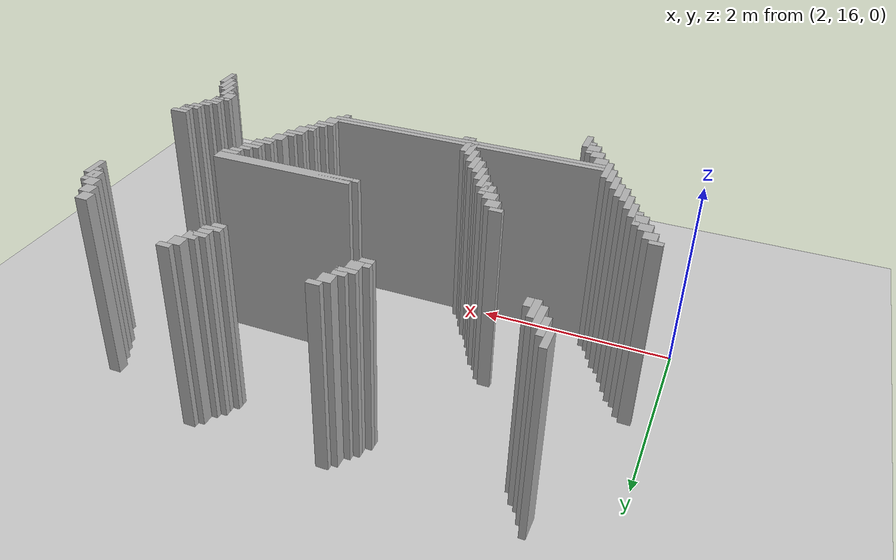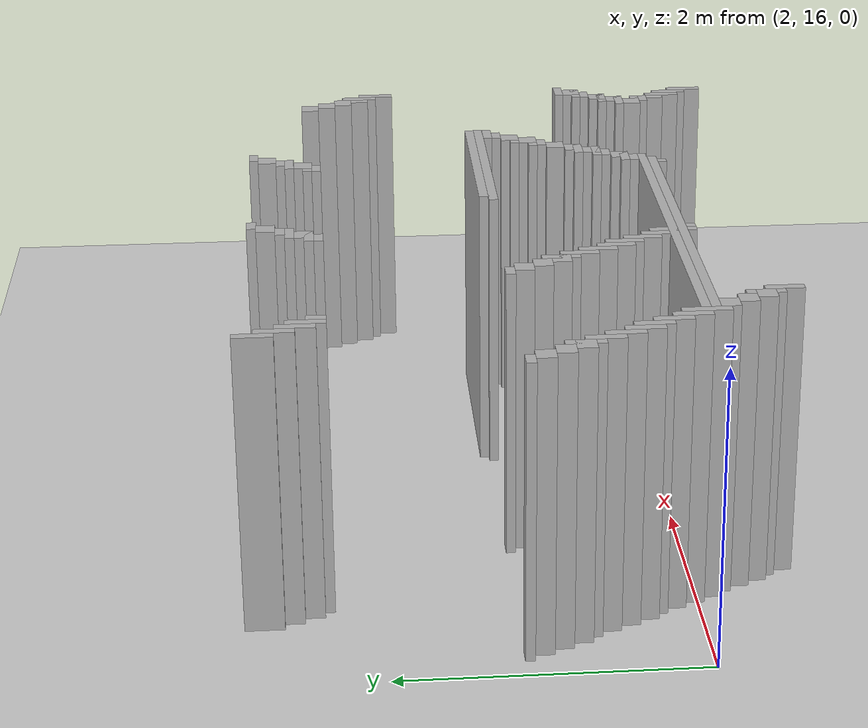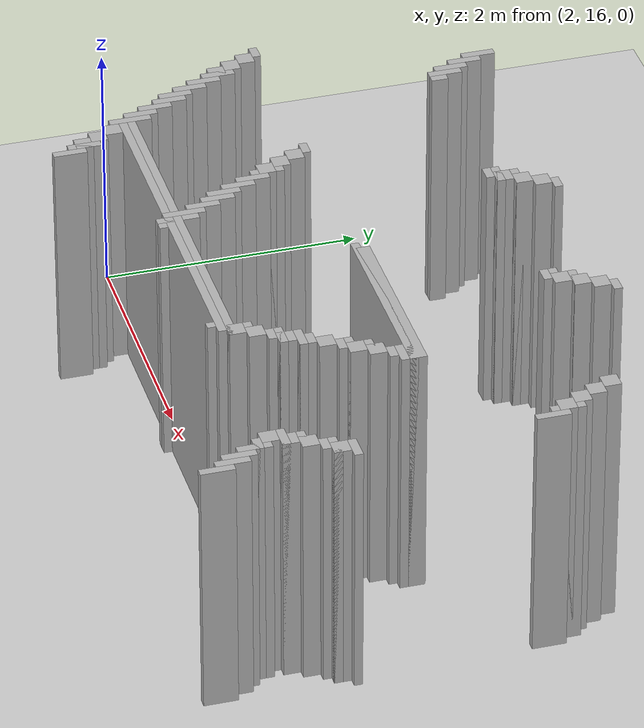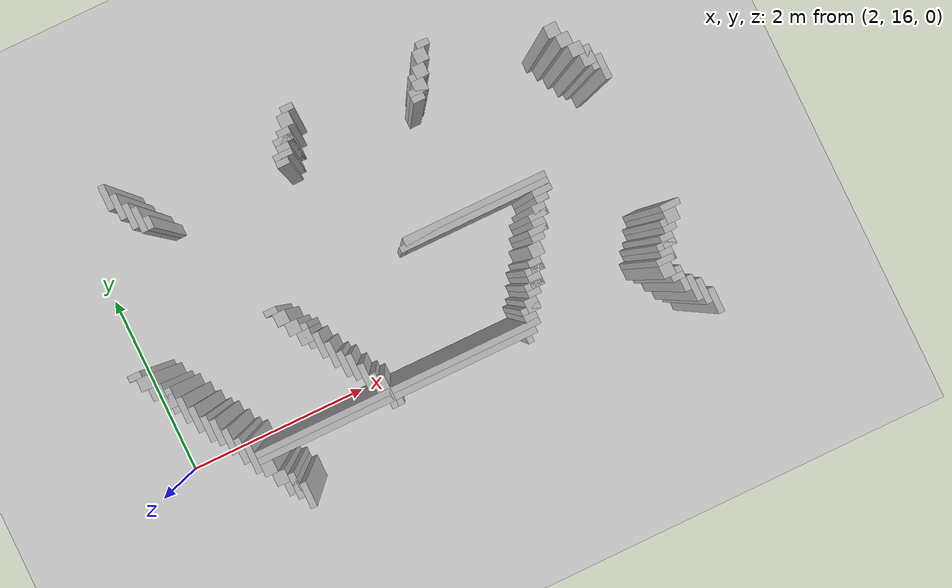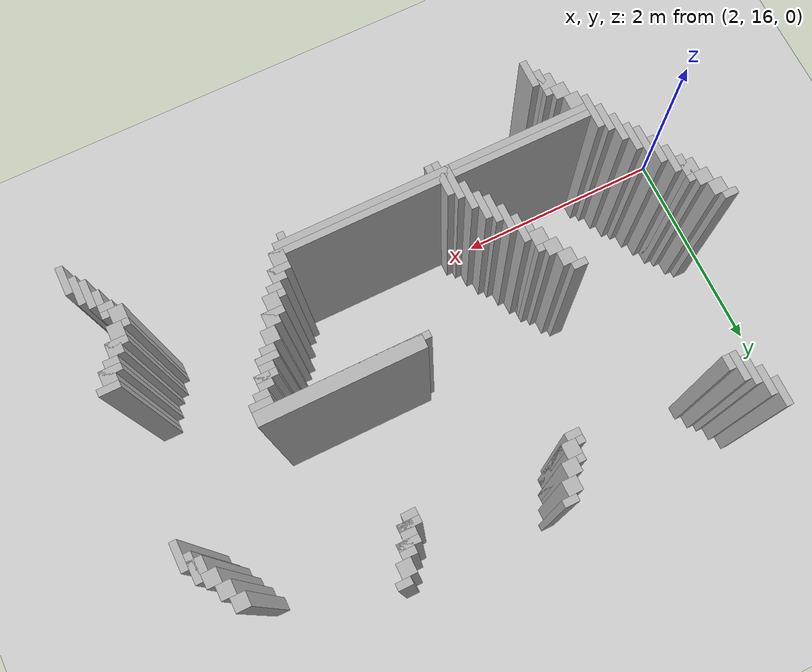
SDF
<sdf version="1.6">
 <world name="slam_world">
  <model name="ground_plane">
   <static>true</static>
   <link name="link">
    <collision name="collision">
     <geometry><plane><normal>0 0 1</normal><size>100 100</size></plane></geometry>
    </collision>
    <visual name="visual">
     <geometry><plane><normal>0 0 1</normal><size>100 100</size></plane></geometry>
     <material>
      <ambient>0.8 0.8 0.8 1</ambient>
      <diffuse>0.8 0.8 0.8 1</diffuse>
      <specular>0.8 0.8 0.8 1</specular>
     </material>
    </visual>
   </link>
  </model>
  <model name="wall_522">
   <static>true</static>
   <pose>2.712765957446808 18.76595744680851 1.0 0 0 0</pose>
   <link name="link">
    <collision name="collision">
     <geometry><box><size>0.06382978723404255 0.2553191489361702 2.0</size></box></geometry>
    </collision>
    <visual name="visual">
     <geometry><box><size>0.06382978723404255 0.2553191489361702 2.0</size></box></geometry>
     <material><ambient>0.5 0.5 0.5 1</ambient><diffuse>0.7 0.7 0.7 1</diffuse></material>
    </visual>
   </link>
  </model>
  <model name="wall_529">
   <static>true</static>
   <pose>4.595744680851063 18.79787234042553 1.0 0 0 0</pose>
   <link name="link">
    <collision name="collision">
     <geometry><box><size>0.1276595744680851 0.06382978723404255 2.0</size></box></geometry>
    </collision>
    <visual name="visual">
     <geometry><box><size>0.1276595744680851 0.06382978723404255 2.0</size></box></geometry>
     <material><ambient>0.5 0.5 0.5 1</ambient><diffuse>0.7 0.7 0.7 1</diffuse></material>
    </visual>
   </link>
  </model>
  <model name="wall_530">
   <static>true</static>
   <pose>5.999999999999999 18.79787234042553 1.0 0 0 0</pose>
   <link name="link">
    <collision name="collision">
     <geometry><box><size>0.1276595744680851 0.06382978723404255 2.0</size></box></geometry>
    </collision>
    <visual name="visual">
     <geometry><box><size>0.1276595744680851 0.06382978723404255 2.0</size></box></geometry>
     <material><ambient>0.5 0.5 0.5 1</ambient><diffuse>0.7 0.7 0.7 1</diffuse></material>
    </visual>
   </link>
  </model>
  <model name="wall_535">
   <static>true</static>
   <pose>2.7765957446808507 18.638297872340424 1.0 0 0 0</pose>
   <link name="link">
    <collision name="collision">
     <geometry><box><size>0.06382978723404255 0.2553191489361702 2.0</size></box></geometry>
    </collision>
    <visual name="visual">
     <geometry><box><size>0.06382978723404255 0.2553191489361702 2.0</size></box></geometry>
     <material><ambient>0.5 0.5 0.5 1</ambient><diffuse>0.7 0.7 0.7 1</diffuse></material>
    </visual>
   </link>
  </model>
  <model name="wall_536">
   <static>true</static>
   <pose>4.531914893617021 18.702127659574465 1.0 0 0 0</pose>
   <link name="link">
    <collision name="collision">
     <geometry><box><size>0.1276595744680851 0.1276595744680851 2.0</size></box></geometry>
    </collision>
    <visual name="visual">
     <geometry><box><size>0.1276595744680851 0.1276595744680851 2.0</size></box></geometry>
     <material><ambient>0.5 0.5 0.5 1</ambient><diffuse>0.7 0.7 0.7 1</diffuse></material>
    </visual>
   </link>
  </model>
  <model name="wall_537">
   <static>true</static>
   <pose>5.936170212765957 18.702127659574465 1.0 0 0 0</pose>
   <link name="link">
    <collision name="collision">
     <geometry><box><size>0.1276595744680851 0.1276595744680851 2.0</size></box></geometry>
    </collision>
    <visual name="visual">
     <geometry><box><size>0.1276595744680851 0.1276595744680851 2.0</size></box></geometry>
     <material><ambient>0.5 0.5 0.5 1</ambient><diffuse>0.7 0.7 0.7 1</diffuse></material>
    </visual>
   </link>
  </model>
  <model name="wall_542">
   <static>true</static>
   <pose>2.840425531914893 18.51063829787234 1.0 0 0 0</pose>
   <link name="link">
    <collision name="collision">
     <geometry><box><size>0.06382978723404255 0.2553191489361702 2.0</size></box></geometry>
    </collision>
    <visual name="visual">
     <geometry><box><size>0.06382978723404255 0.2553191489361702 2.0</size></box></geometry>
     <material><ambient>0.5 0.5 0.5 1</ambient><diffuse>0.7 0.7 0.7 1</diffuse></material>
    </visual>
   </link>
  </model>
  <model name="wall_543">
   <static>true</static>
   <pose>4.468085106382978 18.574468085106382 1.0 0 0 0</pose>
   <link name="link">
    <collision name="collision">
     <geometry><box><size>0.1276595744680851 0.1276595744680851 2.0</size></box></geometry>
    </collision>
    <visual name="visual">
     <geometry><box><size>0.1276595744680851 0.1276595744680851 2.0</size></box></geometry>
     <material><ambient>0.5 0.5 0.5 1</ambient><diffuse>0.7 0.7 0.7 1</diffuse></material>
    </visual>
   </link>
  </model>
  <model name="wall_544">
   <static>true</static>
   <pose>5.872340425531914 18.574468085106382 1.0 0 0 0</pose>
   <link name="link">
    <collision name="collision">
     <geometry><box><size>0.1276595744680851 0.1276595744680851 2.0</size></box></geometry>
    </collision>
    <visual name="visual">
     <geometry><box><size>0.1276595744680851 0.1276595744680851 2.0</size></box></geometry>
     <material><ambient>0.5 0.5 0.5 1</ambient><diffuse>0.7 0.7 0.7 1</diffuse></material>
    </visual>
   </link>
  </model>
  <model name="wall_549">
   <static>true</static>
   <pose>2.9042553191489358 18.446808510638295 1.0 0 0 0</pose>
   <link name="link">
    <collision name="collision">
     <geometry><box><size>0.06382978723404255 0.2553191489361702 2.0</size></box></geometry>
    </collision>
    <visual name="visual">
     <geometry><box><size>0.06382978723404255 0.2553191489361702 2.0</size></box></geometry>
     <material><ambient>0.5 0.5 0.5 1</ambient><diffuse>0.7 0.7 0.7 1</diffuse></material>
    </visual>
   </link>
  </model>
  <model name="wall_550">
   <static>true</static>
   <pose>4.4361702127659575 18.54255319148936 1.0 0 0 0</pose>
   <link name="link">
    <collision name="collision">
     <geometry><box><size>0.19148936170212766 0.06382978723404255 2.0</size></box></geometry>
    </collision>
    <visual name="visual">
     <geometry><box><size>0.19148936170212766 0.06382978723404255 2.0</size></box></geometry>
     <material><ambient>0.5 0.5 0.5 1</ambient><diffuse>0.7 0.7 0.7 1</diffuse></material>
    </visual>
   </link>
  </model>
  <model name="wall_551">
   <static>true</static>
   <pose>5.840425531914893 18.54255319148936 1.0 0 0 0</pose>
   <link name="link">
    <collision name="collision">
     <geometry><box><size>0.19148936170212766 0.06382978723404255 2.0</size></box></geometry>
    </collision>
    <visual name="visual">
     <geometry><box><size>0.19148936170212766 0.06382978723404255 2.0</size></box></geometry>
     <material><ambient>0.5 0.5 0.5 1</ambient><diffuse>0.7 0.7 0.7 1</diffuse></material>
    </visual>
   </link>
  </model>
  <model name="wall_556">
   <static>true</static>
   <pose>4.404255319148936 18.446808510638295 1.0 0 0 0</pose>
   <link name="link">
    <collision name="collision">
     <geometry><box><size>0.1276595744680851 0.1276595744680851 2.0</size></box></geometry>
    </collision>
    <visual name="visual">
     <geometry><box><size>0.1276595744680851 0.1276595744680851 2.0</size></box></geometry>
     <material><ambient>0.5 0.5 0.5 1</ambient><diffuse>0.7 0.7 0.7 1</diffuse></material>
    </visual>
   </link>
  </model>
  <model name="wall_557">
   <static>true</static>
   <pose>5.8085106382978715 18.446808510638295 1.0 0 0 0</pose>
   <link name="link">
    <collision name="collision">
     <geometry><box><size>0.1276595744680851 0.1276595744680851 2.0</size></box></geometry>
    </collision>
    <visual name="visual">
     <geometry><box><size>0.1276595744680851 0.1276595744680851 2.0</size></box></geometry>
     <material><ambient>0.5 0.5 0.5 1</ambient><diffuse>0.7 0.7 0.7 1</diffuse></material>
    </visual>
   </link>
  </model>
  <model name="wall_562">
   <static>true</static>
   <pose>2.9680851063829783 18.382978723404253 1.0 0 0 0</pose>
   <link name="link">
    <collision name="collision">
     <geometry><box><size>0.06382978723404255 0.1276595744680851 2.0</size></box></geometry>
    </collision>
    <visual name="visual">
     <geometry><box><size>0.06382978723404255 0.1276595744680851 2.0</size></box></geometry>
     <material><ambient>0.5 0.5 0.5 1</ambient><diffuse>0.7 0.7 0.7 1</diffuse></material>
    </visual>
   </link>
  </model>
  <model name="wall_563">
   <static>true</static>
   <pose>4.372340425531915 18.414893617021274 1.0 0 0 0</pose>
   <link name="link">
    <collision name="collision">
     <geometry><box><size>0.19148936170212766 0.06382978723404255 2.0</size></box></geometry>
    </collision>
    <visual name="visual">
     <geometry><box><size>0.19148936170212766 0.06382978723404255 2.0</size></box></geometry>
     <material><ambient>0.5 0.5 0.5 1</ambient><diffuse>0.7 0.7 0.7 1</diffuse></material>
    </visual>
   </link>
  </model>
  <model name="wall_564">
   <static>true</static>
   <pose>5.776595744680851 18.414893617021274 1.0 0 0 0</pose>
   <link name="link">
    <collision name="collision">
     <geometry><box><size>0.19148936170212766 0.06382978723404255 2.0</size></box></geometry>
    </collision>
    <visual name="visual">
     <geometry><box><size>0.19148936170212766 0.06382978723404255 2.0</size></box></geometry>
     <material><ambient>0.5 0.5 0.5 1</ambient><diffuse>0.7 0.7 0.7 1</diffuse></material>
    </visual>
   </link>
  </model>
  <model name="wall_565">
   <static>true</static>
   <pose>7.148936170212766 18.382978723404253 1.0 0 0 0</pose>
   <link name="link">
    <collision name="collision">
     <geometry><box><size>0.1276595744680851 0.1276595744680851 2.0</size></box></geometry>
    </collision>
    <visual name="visual">
     <geometry><box><size>0.1276595744680851 0.1276595744680851 2.0</size></box></geometry>
     <material><ambient>0.5 0.5 0.5 1</ambient><diffuse>0.7 0.7 0.7 1</diffuse></material>
    </visual>
   </link>
  </model>
  <model name="wall_572">
   <static>true</static>
   <pose>4.340425531914893 18.351063829787233 1.0 0 0 0</pose>
   <link name="link">
    <collision name="collision">
     <geometry><box><size>0.1276595744680851 0.06382978723404255 2.0</size></box></geometry>
    </collision>
    <visual name="visual">
     <geometry><box><size>0.1276595744680851 0.06382978723404255 2.0</size></box></geometry>
     <material><ambient>0.5 0.5 0.5 1</ambient><diffuse>0.7 0.7 0.7 1</diffuse></material>
    </visual>
   </link>
  </model>
  <model name="wall_573">
   <static>true</static>
   <pose>5.744680851063829 18.351063829787233 1.0 0 0 0</pose>
   <link name="link">
    <collision name="collision">
     <geometry><box><size>0.1276595744680851 0.06382978723404255 2.0</size></box></geometry>
    </collision>
    <visual name="visual">
     <geometry><box><size>0.1276595744680851 0.06382978723404255 2.0</size></box></geometry>
     <material><ambient>0.5 0.5 0.5 1</ambient><diffuse>0.7 0.7 0.7 1</diffuse></material>
    </visual>
   </link>
  </model>
  <model name="wall_577">
   <static>true</static>
   <pose>7.212765957446808 18.25531914893617 1.0 0 0 0</pose>
   <link name="link">
    <collision name="collision">
     <geometry><box><size>0.1276595744680851 0.1276595744680851 2.0</size></box></geometry>
    </collision>
    <visual name="visual">
     <geometry><box><size>0.1276595744680851 0.1276595744680851 2.0</size></box></geometry>
     <material><ambient>0.5 0.5 0.5 1</ambient><diffuse>0.7 0.7 0.7 1</diffuse></material>
    </visual>
   </link>
  </model>
  <model name="wall_588">
   <static>true</static>
   <pose>7.276595744680851 18.127659574468083 1.0 0 0 0</pose>
   <link name="link">
    <collision name="collision">
     <geometry><box><size>0.1276595744680851 0.1276595744680851 2.0</size></box></geometry>
    </collision>
    <visual name="visual">
     <geometry><box><size>0.1276595744680851 0.1276595744680851 2.0</size></box></geometry>
     <material><ambient>0.5 0.5 0.5 1</ambient><diffuse>0.7 0.7 0.7 1</diffuse></material>
    </visual>
   </link>
  </model>
  <model name="wall_595">
   <static>true</static>
   <pose>7.372340425531914 18.0 1.0 0 0 0</pose>
   <link name="link">
    <collision name="collision">
     <geometry><box><size>0.06382978723404255 0.2553191489361702 2.0</size></box></geometry>
    </collision>
    <visual name="visual">
     <geometry><box><size>0.06382978723404255 0.2553191489361702 2.0</size></box></geometry>
     <material><ambient>0.5 0.5 0.5 1</ambient><diffuse>0.7 0.7 0.7 1</diffuse></material>
    </visual>
   </link>
  </model>
  <model name="wall_601">
   <static>true</static>
   <pose>7.340425531914893 18.0 1.0 0 0 0</pose>
   <link name="link">
    <collision name="collision">
     <geometry><box><size>0.1276595744680851 0.1276595744680851 2.0</size></box></geometry>
    </collision>
    <visual name="visual">
     <geometry><box><size>0.1276595744680851 0.1276595744680851 2.0</size></box></geometry>
     <material><ambient>0.5 0.5 0.5 1</ambient><diffuse>0.7 0.7 0.7 1</diffuse></material>
    </visual>
   </link>
  </model>
  <model name="wall_607">
   <static>true</static>
   <pose>7.436170212765957 17.872340425531913 1.0 0 0 0</pose>
   <link name="link">
    <collision name="collision">
     <geometry><box><size>0.06382978723404255 0.2553191489361702 2.0</size></box></geometry>
    </collision>
    <visual name="visual">
     <geometry><box><size>0.06382978723404255 0.2553191489361702 2.0</size></box></geometry>
     <material><ambient>0.5 0.5 0.5 1</ambient><diffuse>0.7 0.7 0.7 1</diffuse></material>
    </visual>
   </link>
  </model>
  <model name="wall_667">
   <static>true</static>
   <pose>5.776595744680851 17.170212765957444 1.0 0 0 0</pose>
   <link name="link">
    <collision name="collision">
     <geometry><box><size>1.4680851063829785 0.1276595744680851 2.0</size></box></geometry>
    </collision>
    <visual name="visual">
     <geometry><box><size>1.4680851063829785 0.1276595744680851 2.0</size></box></geometry>
     <material><ambient>0.5 0.5 0.5 1</ambient><diffuse>0.7 0.7 0.7 1</diffuse></material>
    </visual>
   </link>
  </model>
  <model name="wall_672">
   <static>true</static>
   <pose>2.234042553191489 17.138297872340424 1.0 0 0 0</pose>
   <link name="link">
    <collision name="collision">
     <geometry><box><size>0.1276595744680851 0.06382978723404255 2.0</size></box></geometry>
    </collision>
    <visual name="visual">
     <geometry><box><size>0.1276595744680851 0.06382978723404255 2.0</size></box></geometry>
     <material><ambient>0.5 0.5 0.5 1</ambient><diffuse>0.7 0.7 0.7 1</diffuse></material>
    </visual>
   </link>
  </model>
  <model name="wall_673">
   <static>true</static>
   <pose>3.6382978723404253 17.138297872340424 1.0 0 0 0</pose>
   <link name="link">
    <collision name="collision">
     <geometry><box><size>0.1276595744680851 0.06382978723404255 2.0</size></box></geometry>
    </collision>
    <visual name="visual">
     <geometry><box><size>0.1276595744680851 0.06382978723404255 2.0</size></box></geometry>
     <material><ambient>0.5 0.5 0.5 1</ambient><diffuse>0.7 0.7 0.7 1</diffuse></material>
    </visual>
   </link>
  </model>
  <model name="wall_674">
   <static>true</static>
   <pose>5.744680851063829 17.138297872340424 1.0 0 0 0</pose>
   <link name="link">
    <collision name="collision">
     <geometry><box><size>1.5319148936170213 0.06382978723404255 2.0</size></box></geometry>
    </collision>
    <visual name="visual">
     <geometry><box><size>1.5319148936170213 0.06382978723404255 2.0</size></box></geometry>
     <material><ambient>0.5 0.5 0.5 1</ambient><diffuse>0.7 0.7 0.7 1</diffuse></material>
    </visual>
   </link>
  </model>
  <model name="wall_678">
   <static>true</static>
   <pose>2.2978723404255317 17.04255319148936 1.0 0 0 0</pose>
   <link name="link">
    <collision name="collision">
     <geometry><box><size>0.1276595744680851 0.1276595744680851 2.0</size></box></geometry>
    </collision>
    <visual name="visual">
     <geometry><box><size>0.1276595744680851 0.1276595744680851 2.0</size></box></geometry>
     <material><ambient>0.5 0.5 0.5 1</ambient><diffuse>0.7 0.7 0.7 1</diffuse></material>
    </visual>
   </link>
  </model>
  <model name="wall_679">
   <static>true</static>
   <pose>3.702127659574468 17.04255319148936 1.0 0 0 0</pose>
   <link name="link">
    <collision name="collision">
     <geometry><box><size>0.1276595744680851 0.1276595744680851 2.0</size></box></geometry>
    </collision>
    <visual name="visual">
     <geometry><box><size>0.1276595744680851 0.1276595744680851 2.0</size></box></geometry>
     <material><ambient>0.5 0.5 0.5 1</ambient><diffuse>0.7 0.7 0.7 1</diffuse></material>
    </visual>
   </link>
  </model>
  <model name="wall_680">
   <static>true</static>
   <pose>6.414893617021276 17.074468085106382 1.0 0 0 0</pose>
   <link name="link">
    <collision name="collision">
     <geometry><box><size>0.19148936170212766 0.06382978723404255 2.0</size></box></geometry>
    </collision>
    <visual name="visual">
     <geometry><box><size>0.19148936170212766 0.06382978723404255 2.0</size></box></geometry>
     <material><ambient>0.5 0.5 0.5 1</ambient><diffuse>0.7 0.7 0.7 1</diffuse></material>
    </visual>
   </link>
  </model>
  <model name="wall_685">
   <static>true</static>
   <pose>6.382978723404255 17.01063829787234 1.0 0 0 0</pose>
   <link name="link">
    <collision name="collision">
     <geometry><box><size>0.1276595744680851 0.06382978723404255 2.0</size></box></geometry>
    </collision>
    <visual name="visual">
     <geometry><box><size>0.1276595744680851 0.06382978723404255 2.0</size></box></geometry>
     <material><ambient>0.5 0.5 0.5 1</ambient><diffuse>0.7 0.7 0.7 1</diffuse></material>
    </visual>
   </link>
  </model>
  <model name="wall_687">
   <static>true</static>
   <pose>2.361702127659574 16.914893617021274 1.0 0 0 0</pose>
   <link name="link">
    <collision name="collision">
     <geometry><box><size>0.1276595744680851 0.1276595744680851 2.0</size></box></geometry>
    </collision>
    <visual name="visual">
     <geometry><box><size>0.1276595744680851 0.1276595744680851 2.0</size></box></geometry>
     <material><ambient>0.5 0.5 0.5 1</ambient><diffuse>0.7 0.7 0.7 1</diffuse></material>
    </visual>
   </link>
  </model>
  <model name="wall_688">
   <static>true</static>
   <pose>3.7659574468085104 16.914893617021274 1.0 0 0 0</pose>
   <link name="link">
    <collision name="collision">
     <geometry><box><size>0.1276595744680851 0.1276595744680851 2.0</size></box></geometry>
    </collision>
    <visual name="visual">
     <geometry><box><size>0.1276595744680851 0.1276595744680851 2.0</size></box></geometry>
     <material><ambient>0.5 0.5 0.5 1</ambient><diffuse>0.7 0.7 0.7 1</diffuse></material>
    </visual>
   </link>
  </model>
  <model name="wall_689">
   <static>true</static>
   <pose>6.319148936170213 16.914893617021274 1.0 0 0 0</pose>
   <link name="link">
    <collision name="collision">
     <geometry><box><size>0.1276595744680851 0.1276595744680851 2.0</size></box></geometry>
    </collision>
    <visual name="visual">
     <geometry><box><size>0.1276595744680851 0.1276595744680851 2.0</size></box></geometry>
     <material><ambient>0.5 0.5 0.5 1</ambient><diffuse>0.7 0.7 0.7 1</diffuse></material>
    </visual>
   </link>
  </model>
  <model name="wall_697">
   <static>true</static>
   <pose>2.457446808510638 16.78723404255319 1.0 0 0 0</pose>
   <link name="link">
    <collision name="collision">
     <geometry><box><size>0.06382978723404255 0.2553191489361702 2.0</size></box></geometry>
    </collision>
    <visual name="visual">
     <geometry><box><size>0.06382978723404255 0.2553191489361702 2.0</size></box></geometry>
     <material><ambient>0.5 0.5 0.5 1</ambient><diffuse>0.7 0.7 0.7 1</diffuse></material>
    </visual>
   </link>
  </model>
  <model name="wall_698">
   <static>true</static>
   <pose>3.861702127659574 16.78723404255319 1.0 0 0 0</pose>
   <link name="link">
    <collision name="collision">
     <geometry><box><size>0.06382978723404255 0.2553191489361702 2.0</size></box></geometry>
    </collision>
    <visual name="visual">
     <geometry><box><size>0.06382978723404255 0.2553191489361702 2.0</size></box></geometry>
     <material><ambient>0.5 0.5 0.5 1</ambient><diffuse>0.7 0.7 0.7 1</diffuse></material>
    </visual>
   </link>
  </model>
  <model name="wall_699">
   <static>true</static>
   <pose>6.287234042553191 16.882978723404253 1.0 0 0 0</pose>
   <link name="link">
    <collision name="collision">
     <geometry><box><size>0.19148936170212766 0.06382978723404255 2.0</size></box></geometry>
    </collision>
    <visual name="visual">
     <geometry><box><size>0.19148936170212766 0.06382978723404255 2.0</size></box></geometry>
     <material><ambient>0.5 0.5 0.5 1</ambient><diffuse>0.7 0.7 0.7 1</diffuse></material>
    </visual>
   </link>
  </model>
  <model name="wall_707">
   <static>true</static>
   <pose>2.4255319148936167 16.78723404255319 1.0 0 0 0</pose>
   <link name="link">
    <collision name="collision">
     <geometry><box><size>0.1276595744680851 0.1276595744680851 2.0</size></box></geometry>
    </collision>
    <visual name="visual">
     <geometry><box><size>0.1276595744680851 0.1276595744680851 2.0</size></box></geometry>
     <material><ambient>0.5 0.5 0.5 1</ambient><diffuse>0.7 0.7 0.7 1</diffuse></material>
    </visual>
   </link>
  </model>
  <model name="wall_708">
   <static>true</static>
   <pose>3.829787234042553 16.78723404255319 1.0 0 0 0</pose>
   <link name="link">
    <collision name="collision">
     <geometry><box><size>0.1276595744680851 0.1276595744680851 2.0</size></box></geometry>
    </collision>
    <visual name="visual">
     <geometry><box><size>0.1276595744680851 0.1276595744680851 2.0</size></box></geometry>
     <material><ambient>0.5 0.5 0.5 1</ambient><diffuse>0.7 0.7 0.7 1</diffuse></material>
    </visual>
   </link>
  </model>
  <model name="wall_709">
   <static>true</static>
   <pose>6.25531914893617 16.78723404255319 1.0 0 0 0</pose>
   <link name="link">
    <collision name="collision">
     <geometry><box><size>0.1276595744680851 0.1276595744680851 2.0</size></box></geometry>
    </collision>
    <visual name="visual">
     <geometry><box><size>0.1276595744680851 0.1276595744680851 2.0</size></box></geometry>
     <material><ambient>0.5 0.5 0.5 1</ambient><diffuse>0.7 0.7 0.7 1</diffuse></material>
    </visual>
   </link>
  </model>
  <model name="wall_717">
   <static>true</static>
   <pose>2.5212765957446805 16.659574468085104 1.0 0 0 0</pose>
   <link name="link">
    <collision name="collision">
     <geometry><box><size>0.06382978723404255 0.2553191489361702 2.0</size></box></geometry>
    </collision>
    <visual name="visual">
     <geometry><box><size>0.06382978723404255 0.2553191489361702 2.0</size></box></geometry>
     <material><ambient>0.5 0.5 0.5 1</ambient><diffuse>0.7 0.7 0.7 1</diffuse></material>
    </visual>
   </link>
  </model>
  <model name="wall_718">
   <static>true</static>
   <pose>3.9255319148936167 16.659574468085104 1.0 0 0 0</pose>
   <link name="link">
    <collision name="collision">
     <geometry><box><size>0.06382978723404255 0.2553191489361702 2.0</size></box></geometry>
    </collision>
    <visual name="visual">
     <geometry><box><size>0.06382978723404255 0.2553191489361702 2.0</size></box></geometry>
     <material><ambient>0.5 0.5 0.5 1</ambient><diffuse>0.7 0.7 0.7 1</diffuse></material>
    </visual>
   </link>
  </model>
  <model name="wall_719">
   <static>true</static>
   <pose>6.223404255319148 16.75531914893617 1.0 0 0 0</pose>
   <link name="link">
    <collision name="collision">
     <geometry><box><size>0.19148936170212766 0.06382978723404255 2.0</size></box></geometry>
    </collision>
    <visual name="visual">
     <geometry><box><size>0.19148936170212766 0.06382978723404255 2.0</size></box></geometry>
     <material><ambient>0.5 0.5 0.5 1</ambient><diffuse>0.7 0.7 0.7 1</diffuse></material>
    </visual>
   </link>
  </model>
  <model name="wall_727">
   <static>true</static>
   <pose>6.191489361702128 16.691489361702125 1.0 0 0 0</pose>
   <link name="link">
    <collision name="collision">
     <geometry><box><size>0.1276595744680851 0.06382978723404255 2.0</size></box></geometry>
    </collision>
    <visual name="visual">
     <geometry><box><size>0.1276595744680851 0.06382978723404255 2.0</size></box></geometry>
     <material><ambient>0.5 0.5 0.5 1</ambient><diffuse>0.7 0.7 0.7 1</diffuse></material>
    </visual>
   </link>
  </model>
  <model name="wall_733">
   <static>true</static>
   <pose>2.585106382978723 16.53191489361702 1.0 0 0 0</pose>
   <link name="link">
    <collision name="collision">
     <geometry><box><size>0.06382978723404255 0.2553191489361702 2.0</size></box></geometry>
    </collision>
    <visual name="visual">
     <geometry><box><size>0.06382978723404255 0.2553191489361702 2.0</size></box></geometry>
     <material><ambient>0.5 0.5 0.5 1</ambient><diffuse>0.7 0.7 0.7 1</diffuse></material>
    </visual>
   </link>
  </model>
  <model name="wall_734">
   <static>true</static>
   <pose>3.9893617021276593 16.53191489361702 1.0 0 0 0</pose>
   <link name="link">
    <collision name="collision">
     <geometry><box><size>0.06382978723404255 0.2553191489361702 2.0</size></box></geometry>
    </collision>
    <visual name="visual">
     <geometry><box><size>0.06382978723404255 0.2553191489361702 2.0</size></box></geometry>
     <material><ambient>0.5 0.5 0.5 1</ambient><diffuse>0.7 0.7 0.7 1</diffuse></material>
    </visual>
   </link>
  </model>
  <model name="wall_735">
   <static>true</static>
   <pose>6.127659574468085 16.595744680851062 1.0 0 0 0</pose>
   <link name="link">
    <collision name="collision">
     <geometry><box><size>0.1276595744680851 0.1276595744680851 2.0</size></box></geometry>
    </collision>
    <visual name="visual">
     <geometry><box><size>0.1276595744680851 0.1276595744680851 2.0</size></box></geometry>
     <material><ambient>0.5 0.5 0.5 1</ambient><diffuse>0.7 0.7 0.7 1</diffuse></material>
    </visual>
   </link>
  </model>
  <model name="wall_743">
   <static>true</static>
   <pose>2.6489361702127656 16.404255319148934 1.0 0 0 0</pose>
   <link name="link">
    <collision name="collision">
     <geometry><box><size>0.06382978723404255 0.2553191489361702 2.0</size></box></geometry>
    </collision>
    <visual name="visual">
     <geometry><box><size>0.06382978723404255 0.2553191489361702 2.0</size></box></geometry>
     <material><ambient>0.5 0.5 0.5 1</ambient><diffuse>0.7 0.7 0.7 1</diffuse></material>
    </visual>
   </link>
  </model>
  <model name="wall_744">
   <static>true</static>
   <pose>4.053191489361701 16.404255319148934 1.0 0 0 0</pose>
   <link name="link">
    <collision name="collision">
     <geometry><box><size>0.06382978723404255 0.2553191489361702 2.0</size></box></geometry>
    </collision>
    <visual name="visual">
     <geometry><box><size>0.06382978723404255 0.2553191489361702 2.0</size></box></geometry>
     <material><ambient>0.5 0.5 0.5 1</ambient><diffuse>0.7 0.7 0.7 1</diffuse></material>
    </visual>
   </link>
  </model>
  <model name="wall_745">
   <static>true</static>
   <pose>6.063829787234042 16.46808510638298 1.0 0 0 0</pose>
   <link name="link">
    <collision name="collision">
     <geometry><box><size>0.1276595744680851 0.1276595744680851 2.0</size></box></geometry>
    </collision>
    <visual name="visual">
     <geometry><box><size>0.1276595744680851 0.1276595744680851 2.0</size></box></geometry>
     <material><ambient>0.5 0.5 0.5 1</ambient><diffuse>0.7 0.7 0.7 1</diffuse></material>
    </visual>
   </link>
  </model>
  <model name="wall_753">
   <static>true</static>
   <pose>2.712765957446808 16.340425531914892 1.0 0 0 0</pose>
   <link name="link">
    <collision name="collision">
     <geometry><box><size>0.06382978723404255 0.2553191489361702 2.0</size></box></geometry>
    </collision>
    <visual name="visual">
     <geometry><box><size>0.06382978723404255 0.2553191489361702 2.0</size></box></geometry>
     <material><ambient>0.5 0.5 0.5 1</ambient><diffuse>0.7 0.7 0.7 1</diffuse></material>
    </visual>
   </link>
  </model>
  <model name="wall_754">
   <static>true</static>
   <pose>4.117021276595745 16.340425531914892 1.0 0 0 0</pose>
   <link name="link">
    <collision name="collision">
     <geometry><box><size>0.06382978723404255 0.2553191489361702 2.0</size></box></geometry>
    </collision>
    <visual name="visual">
     <geometry><box><size>0.06382978723404255 0.2553191489361702 2.0</size></box></geometry>
     <material><ambient>0.5 0.5 0.5 1</ambient><diffuse>0.7 0.7 0.7 1</diffuse></material>
    </visual>
   </link>
  </model>
  <model name="wall_755">
   <static>true</static>
   <pose>6.031914893617021 16.436170212765955 1.0 0 0 0</pose>
   <link name="link">
    <collision name="collision">
     <geometry><box><size>0.19148936170212766 0.06382978723404255 2.0</size></box></geometry>
    </collision>
    <visual name="visual">
     <geometry><box><size>0.19148936170212766 0.06382978723404255 2.0</size></box></geometry>
     <material><ambient>0.5 0.5 0.5 1</ambient><diffuse>0.7 0.7 0.7 1</diffuse></material>
    </visual>
   </link>
  </model>
  <model name="wall_756">
   <static>true</static>
   <pose>7.436170212765957 16.436170212765955 1.0 0 0 0</pose>
   <link name="link">
    <collision name="collision">
     <geometry><box><size>0.19148936170212766 0.06382978723404255 2.0</size></box></geometry>
    </collision>
    <visual name="visual">
     <geometry><box><size>0.19148936170212766 0.06382978723404255 2.0</size></box></geometry>
     <material><ambient>0.5 0.5 0.5 1</ambient><diffuse>0.7 0.7 0.7 1</diffuse></material>
    </visual>
   </link>
  </model>
  <model name="wall_763">
   <static>true</static>
   <pose>5.999999999999999 16.340425531914892 1.0 0 0 0</pose>
   <link name="link">
    <collision name="collision">
     <geometry><box><size>0.1276595744680851 0.1276595744680851 2.0</size></box></geometry>
    </collision>
    <visual name="visual">
     <geometry><box><size>0.1276595744680851 0.1276595744680851 2.0</size></box></geometry>
     <material><ambient>0.5 0.5 0.5 1</ambient><diffuse>0.7 0.7 0.7 1</diffuse></material>
    </visual>
   </link>
  </model>
  <model name="wall_764">
   <static>true</static>
   <pose>7.404255319148936 16.340425531914892 1.0 0 0 0</pose>
   <link name="link">
    <collision name="collision">
     <geometry><box><size>0.1276595744680851 0.1276595744680851 2.0</size></box></geometry>
    </collision>
    <visual name="visual">
     <geometry><box><size>0.1276595744680851 0.1276595744680851 2.0</size></box></geometry>
     <material><ambient>0.5 0.5 0.5 1</ambient><diffuse>0.7 0.7 0.7 1</diffuse></material>
    </visual>
   </link>
  </model>
  <model name="wall_769">
   <static>true</static>
   <pose>2.7765957446808507 16.212765957446805 1.0 0 0 0</pose>
   <link name="link">
    <collision name="collision">
     <geometry><box><size>0.06382978723404255 0.2553191489361702 2.0</size></box></geometry>
    </collision>
    <visual name="visual">
     <geometry><box><size>0.06382978723404255 0.2553191489361702 2.0</size></box></geometry>
     <material><ambient>0.5 0.5 0.5 1</ambient><diffuse>0.7 0.7 0.7 1</diffuse></material>
    </visual>
   </link>
  </model>
  <model name="wall_770">
   <static>true</static>
   <pose>4.180851063829787 16.212765957446805 1.0 0 0 0</pose>
   <link name="link">
    <collision name="collision">
     <geometry><box><size>0.06382978723404255 0.2553191489361702 2.0</size></box></geometry>
    </collision>
    <visual name="visual">
     <geometry><box><size>0.06382978723404255 0.2553191489361702 2.0</size></box></geometry>
     <material><ambient>0.5 0.5 0.5 1</ambient><diffuse>0.7 0.7 0.7 1</diffuse></material>
    </visual>
   </link>
  </model>
  <model name="wall_771">
   <static>true</static>
   <pose>5.968085106382978 16.30851063829787 1.0 0 0 0</pose>
   <link name="link">
    <collision name="collision">
     <geometry><box><size>0.19148936170212766 0.06382978723404255 2.0</size></box></geometry>
    </collision>
    <visual name="visual">
     <geometry><box><size>0.19148936170212766 0.06382978723404255 2.0</size></box></geometry>
     <material><ambient>0.5 0.5 0.5 1</ambient><diffuse>0.7 0.7 0.7 1</diffuse></material>
    </visual>
   </link>
  </model>
  <model name="wall_772">
   <static>true</static>
   <pose>7.372340425531914 16.30851063829787 1.0 0 0 0</pose>
   <link name="link">
    <collision name="collision">
     <geometry><box><size>0.19148936170212766 0.06382978723404255 2.0</size></box></geometry>
    </collision>
    <visual name="visual">
     <geometry><box><size>0.19148936170212766 0.06382978723404255 2.0</size></box></geometry>
     <material><ambient>0.5 0.5 0.5 1</ambient><diffuse>0.7 0.7 0.7 1</diffuse></material>
    </visual>
   </link>
  </model>
  <model name="wall_779">
   <static>true</static>
   <pose>5.936170212765957 16.24468085106383 1.0 0 0 0</pose>
   <link name="link">
    <collision name="collision">
     <geometry><box><size>0.1276595744680851 0.06382978723404255 2.0</size></box></geometry>
    </collision>
    <visual name="visual">
     <geometry><box><size>0.1276595744680851 0.06382978723404255 2.0</size></box></geometry>
     <material><ambient>0.5 0.5 0.5 1</ambient><diffuse>0.7 0.7 0.7 1</diffuse></material>
    </visual>
   </link>
  </model>
  <model name="wall_780">
   <static>true</static>
   <pose>7.340425531914893 16.24468085106383 1.0 0 0 0</pose>
   <link name="link">
    <collision name="collision">
     <geometry><box><size>0.1276595744680851 0.06382978723404255 2.0</size></box></geometry>
    </collision>
    <visual name="visual">
     <geometry><box><size>0.1276595744680851 0.06382978723404255 2.0</size></box></geometry>
     <material><ambient>0.5 0.5 0.5 1</ambient><diffuse>0.7 0.7 0.7 1</diffuse></material>
    </visual>
   </link>
  </model>
  <model name="wall_785">
   <static>true</static>
   <pose>2.840425531914893 16.085106382978722 1.0 0 0 0</pose>
   <link name="link">
    <collision name="collision">
     <geometry><box><size>0.06382978723404255 0.2553191489361702 2.0</size></box></geometry>
    </collision>
    <visual name="visual">
     <geometry><box><size>0.06382978723404255 0.2553191489361702 2.0</size></box></geometry>
     <material><ambient>0.5 0.5 0.5 1</ambient><diffuse>0.7 0.7 0.7 1</diffuse></material>
    </visual>
   </link>
  </model>
  <model name="wall_786">
   <static>true</static>
   <pose>4.24468085106383 16.0531914893617 1.0 0 0 0</pose>
   <link name="link">
    <collision name="collision">
     <geometry><box><size>0.06382978723404255 0.3191489361702127 2.0</size></box></geometry>
    </collision>
    <visual name="visual">
     <geometry><box><size>0.06382978723404255 0.3191489361702127 2.0</size></box></geometry>
     <material><ambient>0.5 0.5 0.5 1</ambient><diffuse>0.7 0.7 0.7 1</diffuse></material>
    </visual>
   </link>
  </model>
  <model name="wall_787">
   <static>true</static>
   <pose>5.872340425531914 16.148936170212764 1.0 0 0 0</pose>
   <link name="link">
    <collision name="collision">
     <geometry><box><size>0.1276595744680851 0.1276595744680851 2.0</size></box></geometry>
    </collision>
    <visual name="visual">
     <geometry><box><size>0.1276595744680851 0.1276595744680851 2.0</size></box></geometry>
     <material><ambient>0.5 0.5 0.5 1</ambient><diffuse>0.7 0.7 0.7 1</diffuse></material>
    </visual>
   </link>
  </model>
  <model name="wall_788">
   <static>true</static>
   <pose>7.276595744680851 16.148936170212764 1.0 0 0 0</pose>
   <link name="link">
    <collision name="collision">
     <geometry><box><size>0.1276595744680851 0.1276595744680851 2.0</size></box></geometry>
    </collision>
    <visual name="visual">
     <geometry><box><size>0.1276595744680851 0.1276595744680851 2.0</size></box></geometry>
     <material><ambient>0.5 0.5 0.5 1</ambient><diffuse>0.7 0.7 0.7 1</diffuse></material>
    </visual>
   </link>
  </model>
  <model name="wall_795">
   <static>true</static>
   <pose>2.9042553191489358 15.989361702127658 1.0 0 0 0</pose>
   <link name="link">
    <collision name="collision">
     <geometry><box><size>0.06382978723404255 0.3191489361702127 2.0</size></box></geometry>
    </collision>
    <visual name="visual">
     <geometry><box><size>0.06382978723404255 0.3191489361702127 2.0</size></box></geometry>
     <material><ambient>0.5 0.5 0.5 1</ambient><diffuse>0.7 0.7 0.7 1</diffuse></material>
    </visual>
   </link>
  </model>
  <model name="wall_796">
   <static>true</static>
   <pose>4.308510638297872 15.989361702127658 1.0 0 0 0</pose>
   <link name="link">
    <collision name="collision">
     <geometry><box><size>0.06382978723404255 0.3191489361702127 2.0</size></box></geometry>
    </collision>
    <visual name="visual">
     <geometry><box><size>0.06382978723404255 0.3191489361702127 2.0</size></box></geometry>
     <material><ambient>0.5 0.5 0.5 1</ambient><diffuse>0.7 0.7 0.7 1</diffuse></material>
    </visual>
   </link>
  </model>
  <model name="wall_797">
   <static>true</static>
   <pose>5.840425531914893 16.117021276595743 1.0 0 0 0</pose>
   <link name="link">
    <collision name="collision">
     <geometry><box><size>0.19148936170212766 0.06382978723404255 2.0</size></box></geometry>
    </collision>
    <visual name="visual">
     <geometry><box><size>0.19148936170212766 0.06382978723404255 2.0</size></box></geometry>
     <material><ambient>0.5 0.5 0.5 1</ambient><diffuse>0.7 0.7 0.7 1</diffuse></material>
    </visual>
   </link>
  </model>
  <model name="wall_798">
   <static>true</static>
   <pose>7.244680851063829 16.117021276595743 1.0 0 0 0</pose>
   <link name="link">
    <collision name="collision">
     <geometry><box><size>0.19148936170212766 0.06382978723404255 2.0</size></box></geometry>
    </collision>
    <visual name="visual">
     <geometry><box><size>0.19148936170212766 0.06382978723404255 2.0</size></box></geometry>
     <material><ambient>0.5 0.5 0.5 1</ambient><diffuse>0.7 0.7 0.7 1</diffuse></material>
    </visual>
   </link>
  </model>
  <model name="wall_804">
   <static>true</static>
   <pose>5.8085106382978715 16.02127659574468 1.0 0 0 0</pose>
   <link name="link">
    <collision name="collision">
     <geometry><box><size>0.1276595744680851 0.1276595744680851 2.0</size></box></geometry>
    </collision>
    <visual name="visual">
     <geometry><box><size>0.1276595744680851 0.1276595744680851 2.0</size></box></geometry>
     <material><ambient>0.5 0.5 0.5 1</ambient><diffuse>0.7 0.7 0.7 1</diffuse></material>
    </visual>
   </link>
  </model>
  <model name="wall_805">
   <static>true</static>
   <pose>7.212765957446808 16.02127659574468 1.0 0 0 0</pose>
   <link name="link">
    <collision name="collision">
     <geometry><box><size>0.1276595744680851 0.1276595744680851 2.0</size></box></geometry>
    </collision>
    <visual name="visual">
     <geometry><box><size>0.1276595744680851 0.1276595744680851 2.0</size></box></geometry>
     <material><ambient>0.5 0.5 0.5 1</ambient><diffuse>0.7 0.7 0.7 1</diffuse></material>
    </visual>
   </link>
  </model>
  <model name="wall_810">
   <static>true</static>
   <pose>4.404255319148936 15.989361702127658 1.0 0 0 0</pose>
   <link name="link">
    <collision name="collision">
     <geometry><box><size>2.936170212765957 0.06382978723404255 2.0</size></box></geometry>
    </collision>
    <visual name="visual">
     <geometry><box><size>2.936170212765957 0.06382978723404255 2.0</size></box></geometry>
     <material><ambient>0.5 0.5 0.5 1</ambient><diffuse>0.7 0.7 0.7 1</diffuse></material>
    </visual>
   </link>
  </model>
  <model name="wall_811">
   <static>true</static>
   <pose>7.180851063829786 15.989361702127658 1.0 0 0 0</pose>
   <link name="link">
    <collision name="collision">
     <geometry><box><size>0.19148936170212766 0.06382978723404255 2.0</size></box></geometry>
    </collision>
    <visual name="visual">
     <geometry><box><size>0.19148936170212766 0.06382978723404255 2.0</size></box></geometry>
     <material><ambient>0.5 0.5 0.5 1</ambient><diffuse>0.7 0.7 0.7 1</diffuse></material>
    </visual>
   </link>
  </model>
  <model name="wall_816">
   <static>true</static>
   <pose>4.372340425531915 15.925531914893616 1.0 0 0 0</pose>
   <link name="link">
    <collision name="collision">
     <geometry><box><size>2.8723404255319145 0.06382978723404255 2.0</size></box></geometry>
    </collision>
    <visual name="visual">
     <geometry><box><size>2.8723404255319145 0.06382978723404255 2.0</size></box></geometry>
     <material><ambient>0.5 0.5 0.5 1</ambient><diffuse>0.7 0.7 0.7 1</diffuse></material>
    </visual>
   </link>
  </model>
  <model name="wall_817">
   <static>true</static>
   <pose>7.148936170212766 15.893617021276594 1.0 0 0 0</pose>
   <link name="link">
    <collision name="collision">
     <geometry><box><size>0.1276595744680851 0.1276595744680851 2.0</size></box></geometry>
    </collision>
    <visual name="visual">
     <geometry><box><size>0.1276595744680851 0.1276595744680851 2.0</size></box></geometry>
     <material><ambient>0.5 0.5 0.5 1</ambient><diffuse>0.7 0.7 0.7 1</diffuse></material>
    </visual>
   </link>
  </model>
  <model name="wall_823">
   <static>true</static>
   <pose>2.9999999999999996 15.829787234042552 1.0 0 0 0</pose>
   <link name="link">
    <collision name="collision">
     <geometry><box><size>0.1276595744680851 0.1276595744680851 2.0</size></box></geometry>
    </collision>
    <visual name="visual">
     <geometry><box><size>0.1276595744680851 0.1276595744680851 2.0</size></box></geometry>
     <material><ambient>0.5 0.5 0.5 1</ambient><diffuse>0.7 0.7 0.7 1</diffuse></material>
    </visual>
   </link>
  </model>
  <model name="wall_824">
   <static>true</static>
   <pose>4.372340425531915 15.861702127659573 1.0 0 0 0</pose>
   <link name="link">
    <collision name="collision">
     <geometry><box><size>0.06382978723404255 0.06382978723404255 2.0</size></box></geometry>
    </collision>
    <visual name="visual">
     <geometry><box><size>0.06382978723404255 0.06382978723404255 2.0</size></box></geometry>
     <material><ambient>0.5 0.5 0.5 1</ambient><diffuse>0.7 0.7 0.7 1</diffuse></material>
    </visual>
   </link>
  </model>
  <model name="wall_825">
   <static>true</static>
   <pose>5.712765957446808 15.861702127659573 1.0 0 0 0</pose>
   <link name="link">
    <collision name="collision">
     <geometry><box><size>0.06382978723404255 0.06382978723404255 2.0</size></box></geometry>
    </collision>
    <visual name="visual">
     <geometry><box><size>0.06382978723404255 0.06382978723404255 2.0</size></box></geometry>
     <material><ambient>0.5 0.5 0.5 1</ambient><diffuse>0.7 0.7 0.7 1</diffuse></material>
    </visual>
   </link>
  </model>
  <model name="wall_826">
   <static>true</static>
   <pose>7.244680851063829 15.765957446808509 1.0 0 0 0</pose>
   <link name="link">
    <collision name="collision">
     <geometry><box><size>0.06382978723404255 0.2553191489361702 2.0</size></box></geometry>
    </collision>
    <visual name="visual">
     <geometry><box><size>0.06382978723404255 0.2553191489361702 2.0</size></box></geometry>
     <material><ambient>0.5 0.5 0.5 1</ambient><diffuse>0.7 0.7 0.7 1</diffuse></material>
    </visual>
   </link>
  </model>
  <model name="wall_830">
   <static>true</static>
   <pose>7.212765957446808 15.797872340425531 1.0 0 0 0</pose>
   <link name="link">
    <collision name="collision">
     <geometry><box><size>0.1276595744680851 0.06382978723404255 2.0</size></box></geometry>
    </collision>
    <visual name="visual">
     <geometry><box><size>0.1276595744680851 0.06382978723404255 2.0</size></box></geometry>
     <material><ambient>0.5 0.5 0.5 1</ambient><diffuse>0.7 0.7 0.7 1</diffuse></material>
    </visual>
   </link>
  </model>
  <model name="wall_833">
   <static>true</static>
   <pose>3.0638297872340425 15.702127659574467 1.0 0 0 0</pose>
   <link name="link">
    <collision name="collision">
     <geometry><box><size>0.1276595744680851 0.1276595744680851 2.0</size></box></geometry>
    </collision>
    <visual name="visual">
     <geometry><box><size>0.1276595744680851 0.1276595744680851 2.0</size></box></geometry>
     <material><ambient>0.5 0.5 0.5 1</ambient><diffuse>0.7 0.7 0.7 1</diffuse></material>
    </visual>
   </link>
  </model>
  <model name="wall_834">
   <static>true</static>
   <pose>7.3085106382978715 15.638297872340424 1.0 0 0 0</pose>
   <link name="link">
    <collision name="collision">
     <geometry><box><size>0.06382978723404255 0.2553191489361702 2.0</size></box></geometry>
    </collision>
    <visual name="visual">
     <geometry><box><size>0.06382978723404255 0.2553191489361702 2.0</size></box></geometry>
     <material><ambient>0.5 0.5 0.5 1</ambient><diffuse>0.7 0.7 0.7 1</diffuse></material>
    </visual>
   </link>
  </model>
  <model name="wall_839">
   <static>true</static>
   <pose>3.1595744680851063 15.574468085106382 1.0 0 0 0</pose>
   <link name="link">
    <collision name="collision">
     <geometry><box><size>0.06382978723404255 0.2553191489361702 2.0</size></box></geometry>
    </collision>
    <visual name="visual">
     <geometry><box><size>0.06382978723404255 0.2553191489361702 2.0</size></box></geometry>
     <material><ambient>0.5 0.5 0.5 1</ambient><diffuse>0.7 0.7 0.7 1</diffuse></material>
    </visual>
   </link>
  </model>
  <model name="wall_840">
   <static>true</static>
   <pose>7.372340425531914 15.574468085106382 1.0 0 0 0</pose>
   <link name="link">
    <collision name="collision">
     <geometry><box><size>0.06382978723404255 0.2553191489361702 2.0</size></box></geometry>
    </collision>
    <visual name="visual">
     <geometry><box><size>0.06382978723404255 0.2553191489361702 2.0</size></box></geometry>
     <material><ambient>0.5 0.5 0.5 1</ambient><diffuse>0.7 0.7 0.7 1</diffuse></material>
    </visual>
   </link>
  </model>
  <model name="wall_845">
   <static>true</static>
   <pose>3.127659574468085 15.574468085106382 1.0 0 0 0</pose>
   <link name="link">
    <collision name="collision">
     <geometry><box><size>0.1276595744680851 0.1276595744680851 2.0</size></box></geometry>
    </collision>
    <visual name="visual">
     <geometry><box><size>0.1276595744680851 0.1276595744680851 2.0</size></box></geometry>
     <material><ambient>0.5 0.5 0.5 1</ambient><diffuse>0.7 0.7 0.7 1</diffuse></material>
    </visual>
   </link>
  </model>
  <model name="wall_849">
   <static>true</static>
   <pose>3.223404255319149 15.446808510638297 1.0 0 0 0</pose>
   <link name="link">
    <collision name="collision">
     <geometry><box><size>0.06382978723404255 0.2553191489361702 2.0</size></box></geometry>
    </collision>
    <visual name="visual">
     <geometry><box><size>0.06382978723404255 0.2553191489361702 2.0</size></box></geometry>
     <material><ambient>0.5 0.5 0.5 1</ambient><diffuse>0.7 0.7 0.7 1</diffuse></material>
    </visual>
   </link>
  </model>
  <model name="wall_850">
   <static>true</static>
   <pose>7.436170212765957 15.446808510638297 1.0 0 0 0</pose>
   <link name="link">
    <collision name="collision">
     <geometry><box><size>0.06382978723404255 0.2553191489361702 2.0</size></box></geometry>
    </collision>
    <visual name="visual">
     <geometry><box><size>0.06382978723404255 0.2553191489361702 2.0</size></box></geometry>
     <material><ambient>0.5 0.5 0.5 1</ambient><diffuse>0.7 0.7 0.7 1</diffuse></material>
    </visual>
   </link>
  </model>
 </world>
</sdf>
